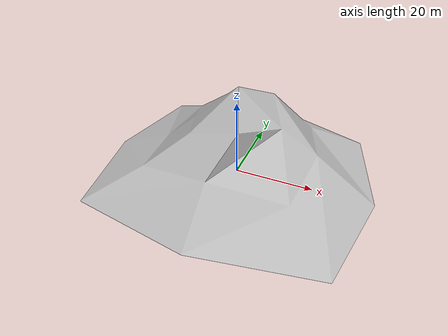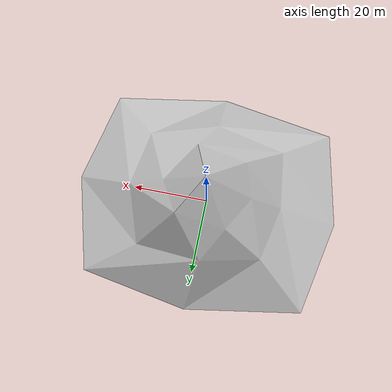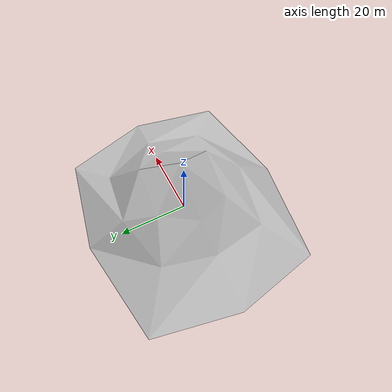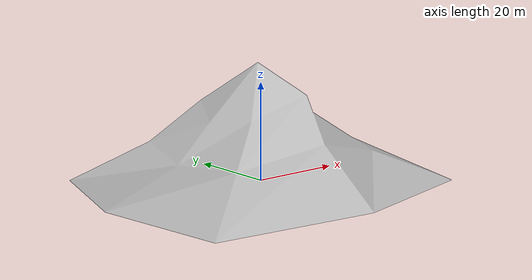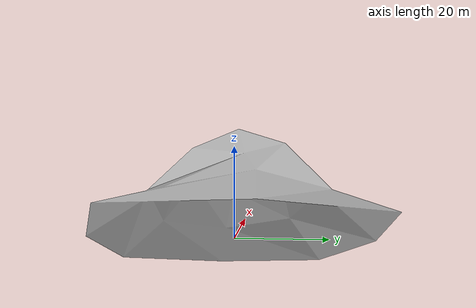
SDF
<?xml version="1.0" ?>

<sdf version="1.9">

  <model name="mountain">

    <static>true</static>

    <link name="mountain_link">

      <visual name="mountain_visual">

        <geometry>

          <mesh>
            <uri>model://mountain/meshes/mountain.obj</uri>
          </mesh>

        </geometry>

      </visual>

    </link>

  </model>

</sdf>
